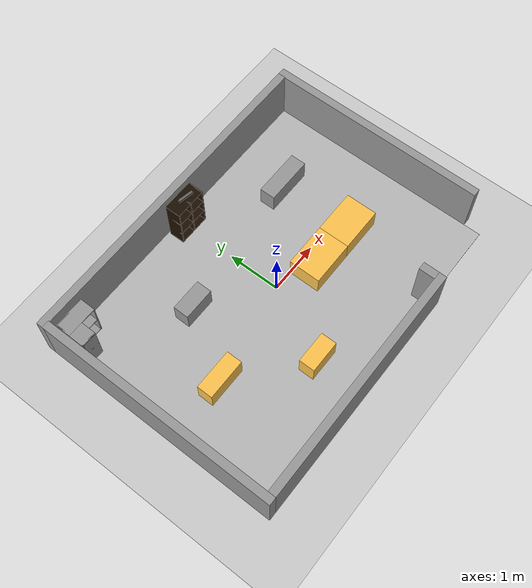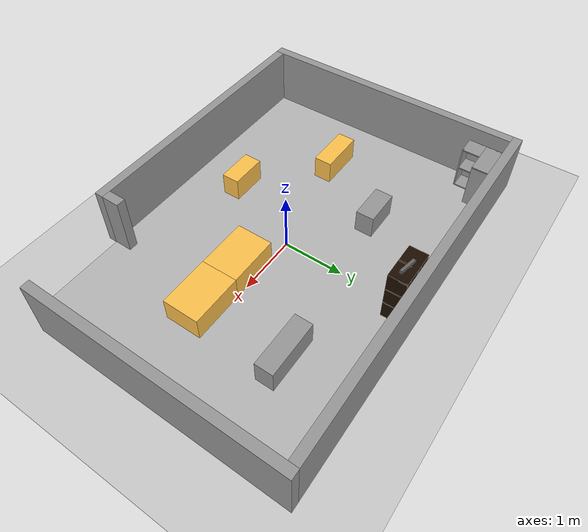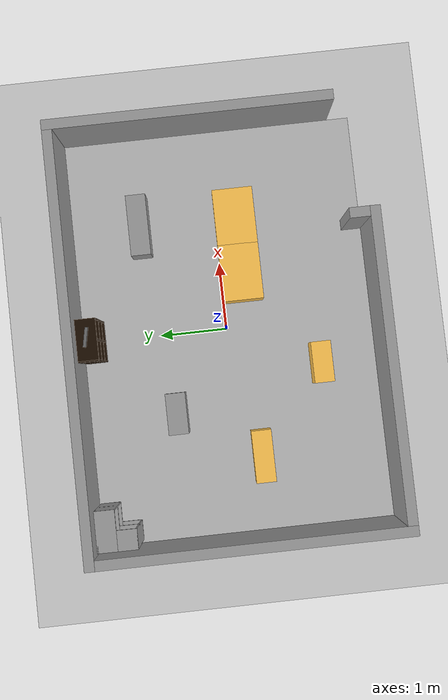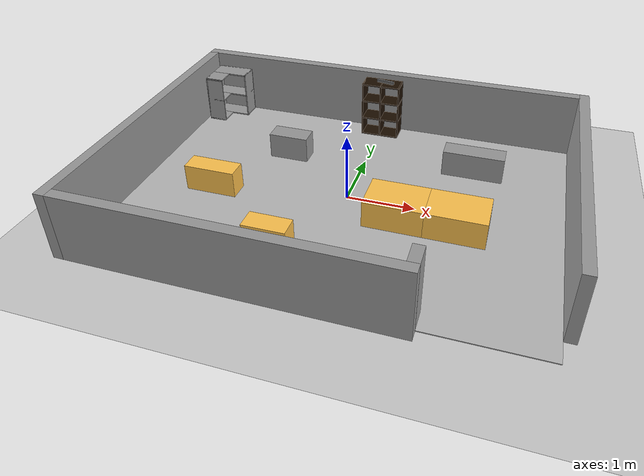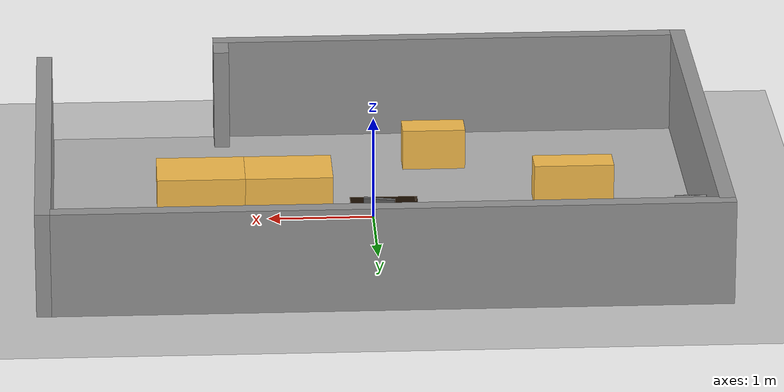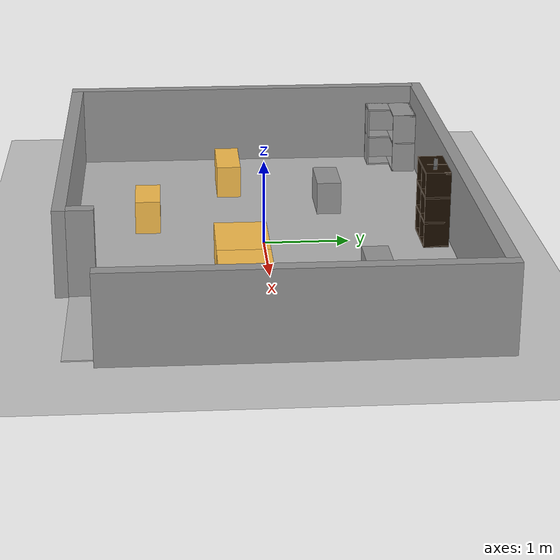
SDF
<sdf version="1.5">
 <world name="default">
  <scene><shadows>true</shadows></scene>
  <light name="sun" type="directional">
   <pose>0 0 10 0 -0 0</pose>
   <diffuse>0.8 0.8 0.8 1</diffuse>
   <specular>0.1 0.1 0.1 1</specular>
   <attenuation>
    <range>1000</range>
    <constant>0.9</constant>
    <linear>0.01</linear>
    <quadratic>0.001</quadratic>
   </attenuation>
   <direction>-0.5 0.5 -1</direction>
  </light>
  <physics name="default_physics" default="0" type="ode">
   <ode>
    <solver>
     <type>quick</type>
     <iters>70</iters>
     <sor>1.3</sor>
     <use_dynamic_moi_rescaling>0</use_dynamic_moi_rescaling>
    </solver>
    <constraints>
     <cfm>0</cfm>
     <erp>0.2</erp>
     <contact_max_correcting_vel>100</contact_max_correcting_vel>
     <contact_surface_layer>0.01</contact_surface_layer>
    </constraints>
   </ode>
   <real_time_update_rate>100</real_time_update_rate>
   <real_time_factor>1</real_time_factor>
   <max_step_size>0.01</max_step_size>
  </physics>
  <include><uri>model://ground_plane</uri></include>
  <include><uri>model://Workshop</uri></include>
  <include><pose>-1.936710 -0.343286 0.013 0 0 -1.57</pose><uri>model://Box_15x30</uri></include>
  <include><pose>1.636 -0.3 0.013 0 0 0</pose><uri>model://Box_33x15</uri></include>
  <include><pose>0.8 -0.3 0.013 0 0 0</pose><uri>model://Box_33x15</uri></include>
  <include><pose>1.658951 1.141109 0.013 0 0 0</pose><uri>model://Box_36x15W</uri></include>
  <include><pose>0 1.986729 0.013002 0 0 0</pose><uri>model://6_Cube_StorageE</uri></include>
  <include><pose>-0.653226 -1.356719 0.013 0 0 0</pose><uri>model://Box_24x15M</uri></include>
  <include><pose>-1.184366 0.857670 0.013 0 0 0</pose><uri>model://Box_24x15W</uri></include>
  <include>
   <pose>-2.710050 1.858030 0.013 0 0 -1.574973</pose>
   <uri>model://Wall_Cabinet_Coin_24x30W</uri>
  </include>
  <include><pose>0.0443 1.991597 0.947936 0.194664 1.558386 0.000047</pose><uri>model://pole</uri></include>
 </world>
</sdf>

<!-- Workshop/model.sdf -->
<sdf version='1.6'>
  <model name='Workshop'>

    <link name='Wall_10'>
      <collision name='Wall_10_Collision'>
        <geometry>
          <box>
            <size>6.26 0.15 1</size>
          </box>
        </geometry>
        <pose frame=''>0 0 0.5 0 -0 0</pose>
      </collision>
      <visual name='Wall_10_Visual'>
        <pose frame=''>0 0 0.5 0 -0 0</pose>
        <geometry>
          <box>
            <size>6.26 0.15 1</size>
          </box>
        </geometry>
        <material>
          <script>
            <uri>file://media/materials/scripts/gazebo.material</uri>
            <name>Gazebo/Grey</name>
          </script>
          <ambient>0 0 0 1</ambient>
        </material>
      </visual>
      <pose frame=''>-0.0745 2.24856 0 0 0 0</pose>
    </link>
    <link name='Wall_11'>
      <collision name='Wall_11_Collision'>
        <geometry>
          <box>
            <size>4.199944 0.15 1</size>
          </box>
        </geometry>
        <pose frame=''>0 0 0.5 0 -0 0</pose>
      </collision>
      <visual name='Wall_11_Visual'>
        <pose frame=''>0 0 0.5 0 -0 0</pose>
        <geometry>
          <box>
            <size>4.199944 0.15 1</size>
          </box>
        </geometry>
        <material>
          <script>
            <uri>file://media/materials/scripts/gazebo.material</uri>
            <name>Gazebo/Grey</name>
          </script>
          <ambient>0 0 0 1</ambient>
        </material>
      </visual>
      <pose frame=''>3.12000 0.223500 0 0 0 -1.5708</pose>
    </link>
    <link name='Wall_13'>
      <collision name='Wall_13_Collision'>
        <geometry>
          <box>
            <size>4.557060 0.15 1</size>
          </box>
        </geometry>
        <pose frame=''>0 0 0.5 0 -0 0</pose>
      </collision>
      <visual name='Wall_13_Visual'>
        <pose frame=''>0 0 0.5 0 -0 0</pose>
        <geometry>
          <box>
            <size>4.557060 0.15 1</size>
          </box>
        </geometry>
        <material>
          <script>
            <uri>file://media/materials/scripts/gazebo.material</uri>
            <name>Gazebo/Grey</name>
          </script>
          <ambient>0 0 0 1</ambient>
        </material>
      </visual>
      <pose frame=''>-3.129500 -0.075000 0 0 0 -1.5708</pose>
    </link>
    <link name='Wall_15'>
      <collision name='Wall_15_Collision'>
        <geometry>
          <box>
            <size>4.521 0.15 1</size>
          </box>
        </geometry>
        <pose frame=''>0 0 0.5 0 -0 0</pose>
      </collision>
      <visual name='Wall_15_Visual'>
        <pose frame=''>0 0 0.5 0 -0 0</pose>
        <geometry>
          <box>
            <size>4.521 0.15 1</size>
          </box>
        </geometry>
        <material>
          <script>
            <uri>file://media/materials/scripts/gazebo.material</uri>
            <name>Gazebo/Grey</name>
          </script>
          <ambient>0 0 0 1</ambient>
        </material>
      </visual>
      <pose frame=''>-0.794000 -2.278500 0 0 -0 0</pose>
    </link>
    <link name='Wall_17'>
      <collision name='Wall_17_Collision'>
        <geometry>
          <box>
            <size>0.302 0.15 1</size>
          </box>
        </geometry>
        <pose frame=''>0 0 0.5 0 -0 0</pose>
      </collision>
      <visual name='Wall_17_Visual'>
        <pose frame=''>0 0 0.5 0 -0 0</pose>
        <geometry>
          <box>
            <size>0.302 0.15 1</size>
          </box>
        </geometry>
        <material>
          <script>
            <uri>file://media/materials/scripts/gazebo.material</uri>
            <name>Gazebo/Grey</name>
          </script>
          <ambient>0 0 0 1</ambient>
        </material>
      </visual>
      <pose frame=''>1.392000 -2.057440 0 0 -0 1.5708</pose>
    </link>
    <link name='Wall_19'>
      <collision name='Wall_19_Collision'>
        <geometry>
          <box>
            <size>6.099 4.38 0.013</size>
          </box>
        </geometry>
        <pose frame=''>0 0 0.0065 0 -0 0</pose>
	 <surface>
          <friction>
            <ode>
              <mu>1</mu>
              <mu2>1</mu2>
            </ode>
          </friction>
	<bounce/>
            <contact>
              <ode/>
            </contact>
        </surface>
 	<max_contacts>10</max_contacts>
      </collision>
      <visual name='Wall_19_Visual'>
        <pose frame=''>0 0 0.0065 0 -0 0</pose>
        <geometry>
          <box>
            <size>6.099 4.38 0.013</size>
          </box>
        </geometry>
           <material>
          <script>
            <uri>model://Workshop/materials/scripts</uri>
            <uri>model://Workshop/materials/textures</uri>
            <name>rubber</name>
          </script>
        </material>
      </visual>
      <pose frame=''>-0.005116 -0.013556 0 0 -0 0</pose>
 <velocity_decay>
          <linear>0</linear>
          <angular>0</angular>
        </velocity_decay>
        <self_collide>0</self_collide>
        <kinematic>0</kinematic>
        <gravity>1</gravity>
    </link>
    <static>1</static>
  </model>
</sdf>

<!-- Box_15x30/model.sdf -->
<sdf version='1.6'>
  <model name='Box_15x30'>
    <link name='Wall'>
     <pose frame=''>0 0.0 0.1985 0 0 0</pose>
	<inertial>
	  <mass>5</mass>
	   <inertia>
	     <ixx>0.3089</ixx>
	     <iyy>0.1022</iyy>
	     <izz>0.2797</izz>
    	     <ixy>0</ixy>
	     <ixz>0</ixz>
	     <iyz>0</iyz>
	   </inertia>
	</inertial>
      <collision name='Wall_Collision'>
        <geometry>
          <box>
            <size>0.296 0.764 0.397</size>
          </box>
        </geometry>
      </collision>
      <visual name='Wall_Visual'>
        <geometry>
          <box>
            <size>0.296 0.764 0.397</size>
          </box>
        </geometry>
        <material>
          <script>
            <uri>file://media/materials/scripts/gazebo.material</uri>
            <name>Gazebo/Grey</name>
          </script>
          <ambient>1 0.764706 0.305882 1</ambient>
        </material>
      </visual>
     </link>

    <static>1</static>
  </model>
</sdf>

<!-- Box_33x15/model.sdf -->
<sdf version='1.6'>
  <model name='Box_33x15'>
    <link name='Wall'>
    <pose frame=''>0 0 0.1985 0 0 0</pose>
	<inertial>
	  <mass>5</mass>
	   <inertia>
	     <ixx>0.2157</ixx>
	     <iyy>0.3597</iyy>
	     <izz>0.4440</izz>
    	     <ixy>0</ixy>
	     <ixz>0</ixz>
	     <iyz>0</iyz>
	   </inertia>
	</inertial>
      <collision name='Wall_Collision'>
        <geometry>
          <box>
            <size>0.84 0.6 0.397 </size>
          </box>
        </geometry>
       </collision>
      <visual name='Wall_Visual'>
       <geometry>
          <box>
            <size>0.84 0.6 0.397 </size>
          </box>
        </geometry>
        <material>
          <script>
            <uri>file://media/materials/scripts/gazebo.material</uri>
            <name>Gazebo/Grey</name>
          </script>
          <ambient>1 0.764706 0.305882 1</ambient>
        </material>
      </visual>
     </link>

    <static>1</static>
  </model>
</sdf>

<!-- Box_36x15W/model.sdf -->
<sdf version='1.6'>
  <model name='Box_36x15W'>
     <link name='Wall'>
 	<pose frame=''>0 0 0.1985 0 0 0</pose>
	<inertial>
	  <mass>5</mass>
	   <inertia>
	     <ixx>0.1022</ixx>
	     <iyy>0.4107</iyy>
	     <izz>0.3815</izz>
    	     <ixy>0</ixy>
	     <ixz>0</ixz>
	     <iyz>0</iyz>
	   </inertia>
	</inertial>
      <collision name='Wall_Collision'>
        <geometry>
          <box>
            <size>0.91 0.296 0.397</size>
          </box>
        </geometry>
      </collision>
      <visual name='Wall_Visual'>
          <geometry>
          <box>
            <size>0.91 0.296 0.397</size>
          </box>
        </geometry>
        <material>
          <script>
            <uri>file://media/materials/scripts/gazebo.material</uri>
            <name>Gazebo/Grey</name>
          </script>
          <ambient>1 1 1 1</ambient>
        </material>
      </visual>
    </link>

    <static>1</static>
  </model>
</sdf>

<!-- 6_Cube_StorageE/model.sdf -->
<sdf version='1.6'>
  <model name='6_Cube_StorageE'>

    <link name='Wall_0'>
    <pose frame=''>0 0 0.01 0 -0 0</pose>
	<inertial>
	  <mass>1.6201</mass>
	   <inertia>
	     <ixx>0.0119</ixx>
	     <iyy>0.0631</iyy>
	     <izz>0.0513</izz>
    	     <ixy>0</ixy>
	     <ixz>0</ixz>
	     <iyz>0</iyz>
	   </inertia>
	</inertial>
      <collision name='Wall_0_Collision'>
        <geometry>
          <box>
            <size>0.616 0.296 0.02</size>
          </box>
        </geometry>
      </collision>
      <visual name='Wall_0_Visual'>
        <geometry>
          <box>
            <size>0.616 0.296 0.02</size>
          </box>
        </geometry>
        <material>
          <script>
            <uri>file://media/materials/scripts/gazebo.material</uri>
            <name>Gazebo/Grey</name>
          </script>
          <ambient>0.105882 0.0509804 0 1</ambient>
        </material>
      </visual>
   </link>

     <joint type="fixed" name="0_2">
      <pose frame=''>-0.308 0 0 0 0 0</pose>
         <parent>Wall_2</parent>
  	 <child>Wall_0</child>
	 <axis>
	   <xyz>1 0 0</xyz>
	 </axis>
       </joint>

  <joint type="fixed" name="0_12">
      <pose frame=''>0 0 0 0 0 0</pose>
         <parent>Wall_12</parent>
  	 <child>Wall_0</child>
	 <axis>
	   <xyz>0 0 1</xyz>
	 </axis>
       </joint>

  <joint type="fixed" name="0_4">
      <pose frame=''>0.308 0 0 0 0 0</pose>
         <parent>Wall_4</parent>
  	 <child>Wall_0</child>
	 <axis>
	   <xyz>1 0 0</xyz>
	 </axis>
       </joint>

    <link name='Wall_10'>
      <pose frame=''>0 0 0.610 0 0 0</pose>
	<inertial>
	  <mass>1.6201</mass>
	   <inertia>
	     <ixx>0.0119</ixx>
	     <iyy>0.0631</iyy>
	     <izz>0.0513</izz>
    	     <ixy>0</ixy>
	     <ixz>0</ixz>
	     <iyz>0</iyz>
	   </inertia>
	</inertial>
      <collision name='Wall_10_Collision'>
        <geometry>
          <box>
            <size>0.616 0.296 0.02 </size>
          </box>
        </geometry>
      </collision>
      <visual name='Wall_10_Visual'>
          <geometry>
          <box>
            <size>0.616 0.296 0.02</size>
          </box>
        </geometry>
        <material>
          <script>
            <uri>file://media/materials/scripts/gazebo.material</uri>
            <name>Gazebo/Grey</name>
          </script>
          <ambient>0.105882 0.0509804 0 1</ambient>
        </material>
      </visual>
    </link>

     <joint type="fixed" name="10_2">
      <pose frame=''>-0.308 0 0 0 0 0</pose>
         <parent>Wall_2</parent>
  	 <child>Wall_10</child>
	 <axis>
	   <xyz>1 0 0</xyz>
	 </axis>
       </joint>

  <joint type="fixed" name="10_12">
      <pose frame=''>0 0 0 0 0 0</pose>
         <parent>Wall_12</parent>
  	 <child>Wall_10</child>
	 <axis>
	   <xyz>0 0 1</xyz>
	 </axis>
       </joint>

  <joint type="fixed" name="10_4">
      <pose frame=''>0.308 0 0 0 0 0</pose>
         <parent>Wall_4</parent>
  	 <child>Wall_10</child>
	 <axis>
	   <xyz>1 0 0</xyz>
	 </axis>
       </joint>

    <link name='Wall_12'>
  <pose frame=''>0 0 0.4575 0 0 0</pose>
	<inertial>
	  <mass>2.4065</mass>
	   <inertia>
	     <ixx>0.0177</ixx>
	     <iyy>0.1855</iyy>
	     <izz>0.1680</izz>
    	     <ixy>0</ixy>
	     <ixz>0</ixz>
	     <iyz>0</iyz>
	   </inertia>
	</inertial>
      <collision name='Wall_12_Collision'>
        <geometry>
          <box>
            <size>0.02 0.296 0.915</size>
          </box>
        </geometry>
      </collision>
      <visual name='Wall_12_Visual'>
         <geometry>
          <box>
            <size>0.02 0.296 0.915</size>
          </box>
        </geometry>
        <material>
          <script>
            <uri>file://media/materials/scripts/gazebo.material</uri>
            <name>Gazebo/Grey</name>
          </script>
          <ambient>0.105882 0.0509804 0 1</ambient>
        </material>
      </visual>
    </link>

    <link name='Wall_2'>
      <pose frame=''>-0.298 0 0.4575 0 0 0</pose>
	<inertial>
	  <mass>2.4065</mass>
	   <inertia>
	     <ixx>0.0177</ixx>
	     <iyy>0.1855</iyy>
	     <izz>0.1680</izz>
    	     <ixy>0</ixy>
	     <ixz>0</ixz>
	     <iyz>0</iyz>
	   </inertia>
	</inertial>
      <collision name='Wall_2_Collision'>
        <geometry>
          <box>
            <size>0.02 0.296 0.915</size>
          </box>
        </geometry>
      </collision>
      <visual name='Wall_2_Visual'>
        <geometry>
          <box>
            <size>0.02 0.296 0.915</size>
          </box>
        </geometry>
        <material>
          <script>
            <uri>file://media/materials/scripts/gazebo.material</uri>
            <name>Gazebo/Grey</name>
          </script>
          <ambient>0.105882 0.0509804 0 1</ambient>
        </material>
      </visual>
    </link>

    <link name='Wall_4'>
      <pose frame=''>0.298 0 0.4575 0 0 0</pose>
	<inertial>
	  <mass>2.4065</mass>
	   <inertia>
	     <ixx>0.0177</ixx>
	     <iyy>0.1855</iyy>
	     <izz>0.1680</izz>
    	     <ixy>0</ixy>
	     <ixz>0</ixz>
	     <iyz>0</iyz>
	   </inertia>
	</inertial>
      <collision name='Wall_4_Collision'>
        <geometry>
          <box>
            <size>0.02 0.296 0.915</size>
          </box>
        </geometry>
      </collision>
      <visual name='Wall_4_Visual'>
        <geometry>
          <box>
            <size>0.02 0.296 0.915</size>
          </box>
        </geometry>
        <material>
          <script>
            <uri>file://media/materials/scripts/gazebo.material</uri>
            <name>Gazebo/Grey</name>
          </script>
          <ambient>0.105882 0.0509804 0 1</ambient>
        </material>
      </visual>
    </link>

    <link name='Wall_6'>
     <pose frame=''>0 0 0.905 0 0 0</pose>
	<inertial>
	  <mass>1.6201</mass>
	   <inertia>
	     <ixx>0.0119</ixx>
	     <iyy>0.0631</iyy>
	     <izz>0.0513</izz>
    	     <ixy>0</ixy>
	     <ixz>0</ixz>
	     <iyz>0</iyz>
	   </inertia>
	</inertial>
      <collision name='Wall_6_Collision'>
        <geometry>
          <box>
            <size>0.616 0.296 0.02</size>
          </box>
        </geometry>
       </collision>
      <visual name='Wall_6_Visual'>
        <geometry>
          <box>
            <size>0.616 0.296 0.02</size>
          </box>
        </geometry>
        <material>
          <script>
            <uri>file://media/materials/scripts/gazebo.material</uri>
            <name>Gazebo/Grey</name>
          </script>
          <ambient>0.105882 0.0509804 0 1</ambient>
        </material>
      </visual>
     </link>

     <joint type="fixed" name="6_2">
      <pose frame=''>-0.308 0 0 0 0 0</pose>
         <parent>Wall_2</parent>
  	 <child>Wall_6</child>
	 <axis>
	   <xyz>2 0 0</xyz>
	 </axis>
       </joint>

  <joint type="fixed" name="6_12">
      <pose frame=''>0 0 0 0 0 0</pose>
         <parent>Wall_12</parent>
  	 <child>Wall_6</child>
	 <axis>
	   <xyz>0 0 1</xyz>
	 </axis>
       </joint>

  <joint type="fixed" name="6_4">
      <pose frame=''>0.308 0 0 0 0 0</pose>
         <parent>Wall_4</parent>
  	 <child>Wall_6</child>
	 <axis>
	   <xyz>1 0 0</xyz>
	 </axis>
       </joint>

    <link name='Wall_8'>
    <pose frame=''>0 0 0.305 0 0 0</pose>
	<inertial>
	  <mass>1.6201</mass>
	   <inertia>
	     <ixx>0.0119</ixx>
	     <iyy>0.0631</iyy>
	     <izz>0.0513</izz>
    	     <ixy>0</ixy>
	     <ixz>0</ixz>
	     <iyz>0</iyz>
	   </inertia>
	</inertial>
      <collision name='Wall_8_Collision'>
        <geometry>
          <box>
            <size>0.616 0.296 0.02</size>
          </box>
        </geometry>
       </collision>
      <visual name='Wall_8_Visual'>
        <geometry>
          <box>
            <size>0.616 0.296 0.02</size>
          </box>
        </geometry>
        <material>
          <script>
            <uri>file://media/materials/scripts/gazebo.material</uri>
            <name>Gazebo/Grey</name>
          </script>
          <ambient>0.105882 0.0509804 0 1</ambient>
        </material>
      </visual>
      </link>

     <joint type="fixed" name="8_2">
      <pose frame=''>-0.308 0 0 0 0 0</pose>
         <parent>Wall_2</parent>
  	 <child>Wall_8</child>
	 <axis>
	   <xyz>1 0 0</xyz>
	 </axis>
       </joint>

  <joint type="fixed" name="8_12">
      <pose frame=''>0 0 0 0 0 0</pose>
         <parent>Wall_12</parent>
  	 <child>Wall_8</child>
	 <axis>
	   <xyz>0 0 1</xyz>
	 </axis>
       </joint>

  <joint type="fixed" name="8_4">
      <pose frame=''>0.308 0 0 0 0 0</pose>
         <parent>Wall_4</parent>
  	 <child>Wall_8</child>
	 <axis>
	   <xyz>1 0 0</xyz>
	 </axis>
       </joint>

    <static>1</static>
  </model>
</sdf>

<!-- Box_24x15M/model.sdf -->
<sdf version='1.6'>
  <model name='Box_24x15M'>
    <link name='Wall'>
	<pose frame=''>0 0 0.1985 0 -0 0</pose>
	<inertial>
	  <mass>5</mass>
	   <inertia>
	     <ixx>0.1022</ixx>
	     <iyy>0.2197</iyy>
	     <izz>0.1905</izz>
    	     <ixy>0</ixy>
	     <ixz>0</ixz>
	     <iyz>0</iyz>
	   </inertia>
	</inertial>
      <collision name='Wall_Collision'>
        <geometry>
          <box>
            <size>0.608 0.296 0.397 </size>
          </box>
        </geometry>

      </collision>
      <visual name='Wall_Visual'>

        <geometry>
          <box>
            <size>0.608 0.296 0.397</size>
          </box>
        </geometry>
       <material>
          <script>
            <uri>file://media/materials/scripts/gazebo.material</uri>
            <name>Gazebo/Grey</name>
          </script>
          <ambient>1 0.764706 0.305882 1</ambient>
        </material>
      </visual>
    </link>

    <static>1</static>
  </model>
</sdf>

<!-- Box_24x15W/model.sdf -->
<sdf version='1.6'>
  <model name='Box_24x15W'>
    <link name='Wall'>
	<pose frame=''>0 0 0.1985 0 0 0</pose>
	<inertial>
	  <mass>5</mass>
	   <inertia>
	     <ixx>0.1022</ixx>
	     <iyy>0.2197</iyy>
	     <izz>0.1905</izz>
    	     <ixy>0</ixy>
	     <ixz>0</ixz>
	     <iyz>0</iyz>
	   </inertia>
	</inertial>
      <collision name='Wall_Collision'>
        <geometry>
          <box>
            <size>0.608 0.296 0.397 </size>
          </box>
        </geometry>

      </collision>
      <visual name='Wall_Visual'>

        <geometry>
          <box>
            <size>0.608 0.296 0.397</size>
          </box>
        </geometry>
        <material>
          <script>
            <uri>file://media/materials/scripts/gazebo.material</uri>
            <name>Gazebo/Grey</name>
          </script>
          <ambient>1 1 1 1</ambient>
        </material>
      </visual>
     </link>

    <static>1</static>
  </model>
</sdf>

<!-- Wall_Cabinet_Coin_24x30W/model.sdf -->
<sdf version='1.6'>
   <model name='Wall_Cabinet_Coin_24x30W'>
    <link name='Wall_10'>
     <pose frame=''>0.286 -0.148 0.384 0 0 0</pose>
	<inertial>
	  <mass>2.1259</mass>
	   <inertia>
	     <ixx>0.0158</ixx>
	     <iyy>0.1202</iyy>
	     <izz>0.1046</izz>
    	     <ixy>0</ixy>
	     <ixz>0</ixz>
	     <iyz>0</iyz>
	   </inertia>
	</inertial>
      <collision name='Wall_10_Collision'>
        <geometry>
          <box>
            <size> 0.02 0.296 0.768</size>
          </box>
        </geometry>
      </collision>
      <visual name='Wall_10_Visual'>
        <geometry>
          <box>
            <size>0.02 0.296 0.768</size>
          </box>
        </geometry>
        <material>
          <script>
            <uri>file://media/materials/scripts/gazebo.material</uri>
            <name>Gazebo/Grey</name>
          </script>
          <ambient>1 1 1 1</ambient>
        </material>
      </visual>
    </link>

     <joint type="fixed" name="10_16">
      <pose frame=''> 0 0 -0.374 0 0 0</pose>
         <parent>Wall_16</parent>
  	 <child>Wall_10</child>
	 <axis>
	   <xyz>1 0 0</xyz>
	 </axis>
       </joint>
   <joint type="fixed" name="10_14">
          <pose frame=''>0 0 0 0 0 0</pose>
         <parent>Wall_14</parent>
  	 <child>Wall_10</child>
	 <axis>
	   <xyz>1 0 0</xyz>
	 </axis>
       </joint>

   <joint type="fixed" name="10_12">
      <pose frame=''>0 0 0.374 0 0 0</pose>
         <parent>Wall_12</parent>
  	 <child>Wall_10</child>
	 <axis>
	   <xyz>1 0 0</xyz>
	 </axis>
       </joint>

   <joint type="fixed" name="10_29">
      <pose frame=''>0 -0.148 0 0 0 0</pose>
         <parent>Wall_29</parent>
  	 <child>Wall_10</child>
	 <axis>
	   <xyz>1 0 0</xyz>
	 </axis>
       </joint>

    <link name='Wall_12'>
   <pose frame=''>0.148 -0.148 0.758 0 0 0</pose>
	<inertial>
	  <mass>0.8802</mass>
	   <inertia>
	     <ixx>0.0065</ixx>
	     <iyy>0.0139</iyy>
	     <izz>0.0074</izz>
    	     <ixy>0</ixy>
	     <ixz>0</ixz>
	     <iyz>0</iyz>
	   </inertia>
	</inertial>
      <collision name='Wall_12_Collision'>
        <geometry>
          <box>
            <size>0.296 0.296 0.02</size>
          </box>
        </geometry>
      </collision>
      <visual name='Wall_12_Visual'>
        <geometry>
          <box>
            <size>0.296 0.296 0.02</size>
          </box>
        </geometry>
        <material>
          <script>
            <uri>file://media/materials/scripts/gazebo.material</uri>
            <name>Gazebo/Grey</name>
          </script>
          <ambient>1 1 1 1</ambient>
        </material>
      </visual>
     </link>

   <joint type="fixed" name="12_29">
      <pose frame=''>0 -0.148 0 0 0 0</pose>
         <parent>Wall_29</parent>
  	 <child>Wall_12</child>
	 <axis>
	   <xyz>0 0 1</xyz>
	 </axis>
       </joint>

    <link name='Wall_14'>
      <pose frame=''>0.148 -0.148 0.384 0 0 0</pose>
	<inertial>
	  <mass>0.8802</mass>
	   <inertia>
	     <ixx>0.0065</ixx>
	     <iyy>0.0139</iyy>
	     <izz>0.0074</izz>
    	     <ixy>0</ixy>
	     <ixz>0</ixz>
	     <iyz>0</iyz>
	   </inertia>
	</inertial>
      <collision name='Wall_14_Collision'>
        <geometry>
          <box>
            <size>0.296 0.296 0.02</size>
          </box>
        </geometry>
      </collision>
      <visual name='Wall_14_Visual'>
        <geometry>
          <box>
            <size>0.296 0.296 0.02</size>
          </box>
        </geometry>
        <material>
          <script>
            <uri>file://media/materials/scripts/gazebo.material</uri>
            <name>Gazebo/Grey</name>
          </script>
          <ambient>1 1 1 1</ambient>
        </material>
      </visual>
    </link>

   <joint type="fixed" name="14_29">
      <pose frame=''>0 -0.148 0 0 0 0</pose>
         <parent>Wall_29</parent>
  	 <child>Wall_14</child>
	 <axis>
	   <xyz>0 1 0</xyz>
	 </axis>
       </joint>

    <link name='Wall_16'>
      <pose frame=''>0.148 -0.148 0.01 0 0 0</pose>
	<inertial>
	  <mass>0.8802</mass>
	   <inertia>
	     <ixx>0.0065</ixx>
	     <iyy>0.0139</iyy>
	     <izz>0.0074</izz>
    	     <ixy>0</ixy>
	     <ixz>0</ixz>
	     <iyz>0</iyz>
	   </inertia>
	</inertial>
      <collision name='Wall_16_Collision'>
        <geometry>
          <box>
            <size>0.296 0.296 0.02 </size>
          </box>
        </geometry>
       </collision>
      <visual name='Wall_16_Visual'>
         <geometry>
          <box>
            <size>0.296 0.296 0.02</size>
          </box>
        </geometry>
        <material>
          <script>
            <uri>file://media/materials/scripts/gazebo.material</uri>
            <name>Gazebo/Grey</name>
          </script>
          <ambient>1 1 1 1</ambient>
        </material>
      </visual>
    </link>

   <joint type="fixed" name="16_29">
      <pose frame=''>0  -0.148 0 0 0 0</pose>
         <parent>Wall_29</parent>
  	 <child>Wall_16</child>
	 <axis>
	   <xyz>0 1 0</xyz>
	 </axis>
       </joint>

    <link name='Wall_18'>
      <pose frame=''>-0.148 0 0.01 0 0 0</pose>
	<inertial>
	  <mass>1.6525</mass>
	   <inertia>
	     <ixx>0.0491</ixx>
	     <iyy>0.0613</iyy>
	     <izz>0.0123</izz>
    	     <ixy>0</ixy>
	     <ixz>0</ixz>
	     <iyz>0</iyz>
	   </inertia>
	</inertial>
      <collision name='Wall_18_Collision'>
        <geometry>
          <box>
            <size>0.296 0.592 0.02</size>
          </box>
        </geometry>
        </collision>
      <visual name='Wall_18_Visual'>
        <geometry>
          <box>
            <size>0.296 0.592 0.02</size>
          </box>
        </geometry>
        <material>
          <script>
            <uri>file://media/materials/scripts/gazebo.material</uri>
            <name>Gazebo/Grey</name>
          </script>
          <ambient>1 1 1 1</ambient>
        </material>
      </visual>
    </link>

  <joint type="fixed" name="18_16">
      <pose frame=''> 0.148 -0.148 0 0 0 0</pose>
         <parent>Wall_16</parent>
  	 <child>Wall_18</child>
	 <axis>
	   <xyz>1 0 0</xyz>
	 </axis>
       </joint>

   <joint type="fixed" name="18_29">
          <pose frame=''>0 -0.296 0 0 0 0</pose>
         <parent>Wall_29</parent>
  	 <child>Wall_18</child>
	 <axis>
	   <xyz>0 1 0</xyz>
	 </axis>
       </joint>

   <joint type="fixed" name="18_27">
      <pose frame=''>-0.148 0 0 0 0 0</pose>
         <parent>Wall_27</parent>
  	 <child>Wall_18</child>
	 <axis>
	   <xyz>1 0 0</xyz>
	 </axis>
       </joint>

   <joint type="fixed" name="18_30">
      <pose frame=''>0 0.296 0 0 0 0</pose>
         <parent>Wall_30</parent>
  	 <child>Wall_18</child>
	 <axis>
	   <xyz>0 1 0</xyz>
	 </axis>
       </joint>

    <link name='Wall_20'>
      <pose frame=''>-0.148 0 0.384 0 0 0</pose>
	<inertial>
	  <mass>1.6525</mass>
	   <inertia>
	     <ixx>0.0491</ixx>
	     <iyy>0.0613</iyy>
	     <izz>0.0123</izz>
    	     <ixy>0</ixy>
	     <ixz>0</ixz>
	     <iyz>0</iyz>
	   </inertia>
	</inertial>
      <collision name='Wall_20_Collision'>
        <geometry>
          <box>
            <size>0.296 0.592 0.02</size>
          </box>
        </geometry>
      </collision>
      <visual name='Wall_20_Visual'>
        <geometry>
          <box>
            <size>0.296 0.592 0.02</size>
          </box>
        </geometry>
        <material>
          <script>
            <uri>file://media/materials/scripts/gazebo.material</uri>
            <name>Gazebo/Grey</name>
          </script>
          <ambient>1 1 1 1</ambient>
        </material>
      </visual>
    </link>

<joint type="fixed" name="20_14">
      <pose frame=''> 0.148 -0.148 0 0 0 0</pose>
         <parent>Wall_14</parent>
  	 <child>Wall_20</child>
	 <axis>
	   <xyz>1 0 0</xyz>
	 </axis>
       </joint>

   <joint type="fixed" name="20_29">
          <pose frame=''>0  -0.296 0 0 0 0</pose>
         <parent>Wall_29</parent>
  	 <child>Wall_20</child>
	 <axis>
	   <xyz>0 1 0</xyz>
	 </axis>
       </joint>

   <joint type="fixed" name="20_27">
      <pose frame=''>-0.148 0 0 0 0 0</pose>
         <parent>Wall_27</parent>
  	 <child>Wall_20</child>
	 <axis>
	   <xyz>1 0 0</xyz>
	 </axis>
       </joint>

   <joint type="fixed" name="20_30">
      <pose frame=''>0 0.296 0 0 0 0</pose>
         <parent>Wall_30</parent>
  	 <child>Wall_20</child>
	 <axis>
	   <xyz>0 1 0</xyz>
	 </axis>
       </joint>

    <link name='Wall_22'>
      <pose frame=''>-0.148 0 0.758 0 0 0</pose>
	<inertial>
	  <mass>1.6525</mass>
	   <inertia>
	     <ixx>0.0491</ixx>
	     <iyy>0.0613</iyy>
	     <izz>0.0123</izz>
    	     <ixy>0</ixy>
	     <ixz>0</ixz>
	     <iyz>0</iyz>
	   </inertia>
	</inertial>
      <collision name='Wall_22_Collision'>
        <geometry>
          <box>
            <size>0.296 0.592 0.02</size>
          </box>
        </geometry>
      </collision>
      <visual name='Wall_22_Visual'>
        <geometry>
          <box>
            <size>0.296 0.592 0.02</size>
          </box>
        </geometry>
        <material>
          <script>
            <uri>file://media/materials/scripts/gazebo.material</uri>
            <name>Gazebo/Grey</name>
          </script>
          <ambient>1 1 1 1</ambient>
        </material>
      </visual>
    </link>

<joint type="fixed" name="22_12">
      <pose frame=''> 0.148 -0.148 0 0 0 0</pose>
         <parent>Wall_12</parent>
  	 <child>Wall_22</child>
	 <axis>
	   <xyz>1 0 0</xyz>
	 </axis>
       </joint>

   <joint type="fixed" name="22_29">
          <pose frame=''>0 -0.296 0 0 0 0</pose>
         <parent>Wall_29</parent>
  	 <child>Wall_22</child>
	 <axis>
	   <xyz>0 1 0</xyz>
	 </axis>
       </joint>

   <joint type="fixed" name="22_27">
      <pose frame=''>-0.148 0 0 0 0 0</pose>
         <parent>Wall_27</parent>
  	 <child>Wall_22</child>
	 <axis>
	   <xyz>1 0 0</xyz>
	 </axis>
       </joint>

   <joint type="fixed" name="22_30">
      <pose frame=''>0 0.296 0 0 0 0</pose>
         <parent>Wall_30</parent>
  	 <child>Wall_22</child>
	 <axis>
	   <xyz>0 1 0</xyz>
	 </axis>
       </joint>

    <link name='Wall_27'>
      <pose frame=''>-0.286 0 0.384 0 0 0</pose>
	<inertial>
	  <mass>4.2589</mass>
	   <inertia>
	     <ixx>0.1266</ixx>
	     <iyy>0.3358</iyy>
	     <izz>0.2095</izz>
    	     <ixy>0</ixy>
	     <ixz>0</ixz>
	     <iyz>0</iyz>
	   </inertia>
	</inertial>
      <collision name='Wall_27_Collision'>
        <geometry>
          <box>
            <size>0.02 0.592 0.768</size>
          </box>
        </geometry>
      </collision>
      <visual name='Wall_27_Visual'>
        <geometry>
          <box>
            <size>0.02 0.592 0.768</size>
          </box>
        </geometry>
        <material>
          <script>
            <uri>file://media/materials/scripts/gazebo.material</uri>
            <name>Gazebo/Grey</name>
          </script>
          <ambient>1 1 1 1</ambient>
        </material>
      </visual>
    </link>

   <joint type="fixed" name="27_30">
      <pose frame=''>0 0.296 0 0 0 0</pose>
         <parent>Wall_30</parent>
  	 <child>Wall_27</child>
	 <axis>
	   <xyz>0 1 0</xyz>
	 </axis>
       </joint>

    <link name='Wall_29'>
     <pose frame=''>0 -0.286 0.384 0 0 0</pose>
	<inertial>
	  <mass>4.3176</mass>
	   <inertia>
	     <ixx>0.1340</ixx>
	     <iyy>0.2091</iyy>
	     <izz>0.3428</izz>
    	     <ixy>0</ixy>
	     <ixz>0</ixz>
	     <iyz>0</iyz>
	   </inertia>
	</inertial>
      <collision name='Wall_29_Collision'>
        <geometry>
          <box>
            <size> 0.592 0.02 0.768</size>
          </box>
        </geometry>
       </collision>
      <visual name='Wall_29_Visual'>
         <geometry>
          <box>
            <size>0.592 0.02 0.768</size>
          </box>
        </geometry>
        <material>
          <script>
            <uri>file://media/materials/scripts/gazebo.material</uri>
            <name>Gazebo/Grey</name>
          </script>
          <ambient>1 1 1 1</ambient>
        </material>
      </visual>
     </link>

 <link name='Wall_30'>
      <pose frame=''>-0.148 0.286 0.384 0 0 0</pose>
	<inertial>
	  <mass>2.1093</mass>
	   <inertia>
	     <ixx>0.1021</ixx>
	     <iyy>0.0157</iyy>
	     <izz>0.1177</izz>
    	     <ixy>0</ixy>
	     <ixz>0</ixz>
	     <iyz>0</iyz>
	   </inertia>
	</inertial>
      <collision name='Wall_30_Collision'>
        <geometry>
          <box>
            <size>0.296  0.02 0.768</size>
          </box>
        </geometry>
       </collision>
      <visual name='Wall_30_Visual'>
        <geometry>
          <box>
            <size>0.296  0.02 0.768</size>
          </box>
        </geometry>
        <material>
          <script>
            <uri>file://media/materials/scripts/gazebo.material</uri>
            <name>Gazebo/Grey</name>
          </script>
          <ambient>1 1 1 1</ambient>
        </material>
      </visual>
    </link>

    <static>1</static>
  </model>
</sdf>

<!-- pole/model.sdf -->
<sdf version="1.5">
 <!--pole-->
   <model name="pole">
    <link name="body">
    <inertial>
	<mass>2</mass>
	<inertia>
	 <ixx>0.00038054</ixx>
	 <iyy>0.00038054</iyy>
	 <izz>0.00064533</izz>
	 <ixy>0</ixy>
	 <ixz>0</ixz>
	 <iyz>0</iyz>
	</inertia>
       </inertial>

<!--pole Collision-->
     <collision name="pc1">
      <geometry>
        <box>
	  <size> 0.045 0.044 0.289849 </size>
	</box>
      </geometry>
     </collision>

 <!--pole Visual-->
    <visual name="pv1">
      <material>
        <diffuse>0.4 0.4 0.4 1.0</diffuse>
	<ambient>0.4 0.4 0.4 1.0</ambient>
	<specular>0.4 0.4 0.4 1.0</specular>
	<emissive>0.4 0.4 0.4 1.0</emissive>
      </material>
      <geometry>
        <box>
	  <size> 0.045 0.044 0.286849 </size>
	</box>
      </geometry>
     </visual>
  </link>
<static>1</static>
 </model>
</sdf>
